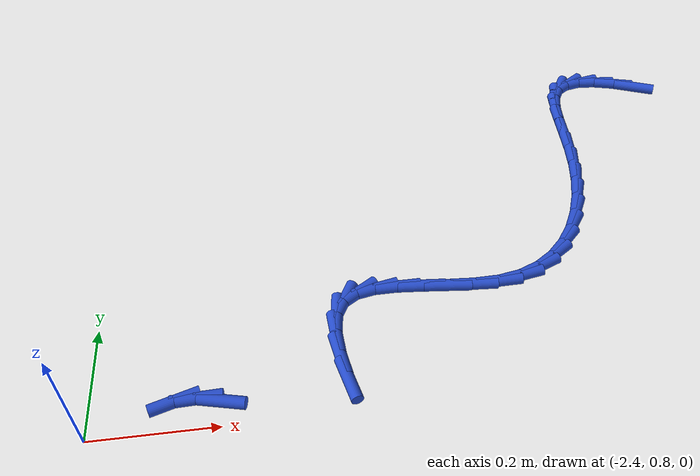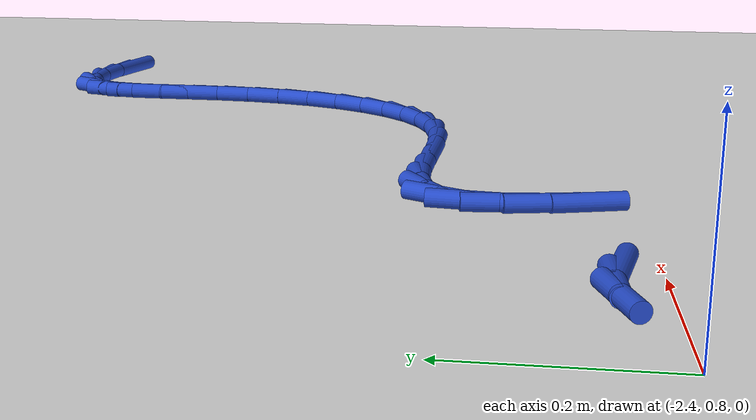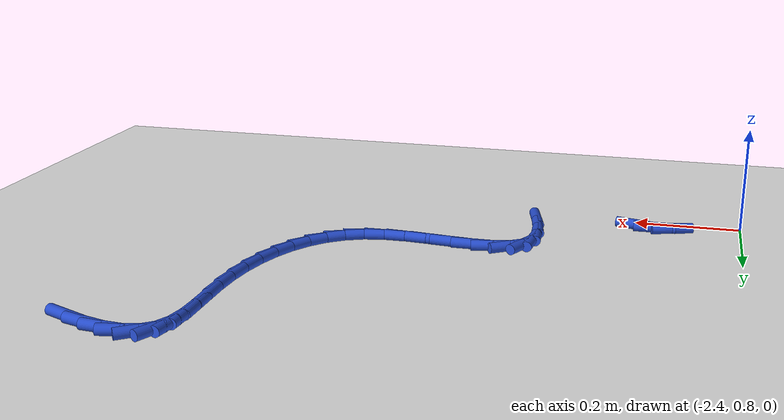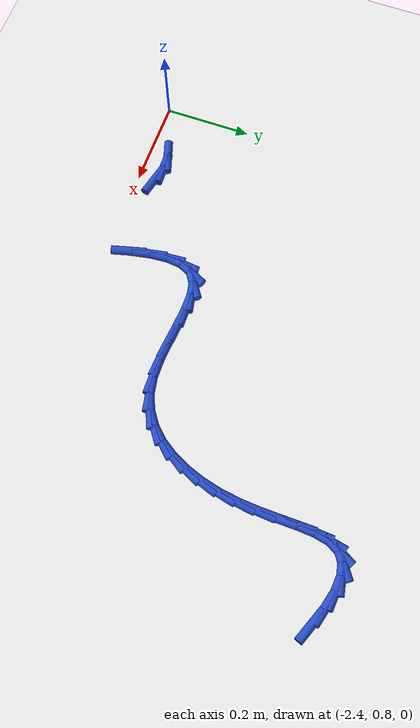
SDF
<sdf version="1.6">
 <world name="default">
  <model name="ground_plane">
   <static>1</static>
   <link name="link">
    <collision name="collision">
     <geometry><plane><normal>0 0 1</normal><size>100 100</size></plane></geometry>
     <surface><friction><ode><mu>100</mu><mu2>50</mu2></ode></friction></surface>
    </collision>
    <visual name="visual">
     <cast_shadows>0</cast_shadows>
     <geometry><plane><normal>0 0 1</normal><size>100 100</size></plane></geometry>
     <material>
      <script><uri>file://media/materials/scripts/gazebo.material</uri><name>Gazebo/WhiteGlow</name></script>
     </material>
    </visual>
   </link>
  </model>
  <model name="line">
   <link name="link_72">
    <pose>-1.3644774054517028 1.4929364755796188 0.01 0 1.57 -0.3667604441353496</pose>
    <collision name="collision">
     <geometry><cylinder><radius>0.01</radius><length>0.08</length></cylinder></geometry>
    </collision>
    <visual name="visual">
     <material>
      <script><name>Gazebo/Blue</name><uri>file://media/materials/scripts/gazebo.material</uri></script>
     </material>
     <geometry><cylinder><radius>0.01</radius><length>0.08</length></cylinder></geometry>
    </visual>
   </link>
   <link name="link_73">
    <pose>-1.4055859418133523 1.5087279464761993 0.01 0 1.57 -0.24593590143215077</pose>
    <collision name="collision">
     <geometry><cylinder><radius>0.01</radius><length>0.08</length></cylinder></geometry>
    </collision>
    <visual name="visual">
     <material>
      <script><name>Gazebo/Blue</name><uri>file://media/materials/scripts/gazebo.material</uri></script>
     </material>
     <geometry><cylinder><radius>0.01</radius><length>0.08</length></cylinder></geometry>
    </visual>
   </link>
   <link name="link_74">
    <pose>-1.4430153377447048 1.5181233727376748 0.01 0 1.57 -0.06765119833788105</pose>
    <collision name="collision">
     <geometry><cylinder><radius>0.01</radius><length>0.08</length></cylinder></geometry>
    </collision>
    <visual name="visual">
     <material>
      <script><name>Gazebo/Blue</name><uri>file://media/materials/scripts/gazebo.material</uri></script>
     </material>
     <geometry><cylinder><radius>0.01</radius><length>0.08</length></cylinder></geometry>
    </visual>
   </link>
   <link name="link_75">
    <pose>-1.475707504338588 1.5203384172021503 0.01 0 1.57 0.2105979048781416</pose>
    <collision name="collision">
     <geometry><cylinder><radius>0.01</radius><length>0.08</length></cylinder></geometry>
    </collision>
    <visual name="visual">
     <material>
      <script><name>Gazebo/Blue</name><uri>file://media/materials/scripts/gazebo.material</uri></script>
     </material>
     <geometry><cylinder><radius>0.01</radius><length>0.08</length></cylinder></geometry>
    </visual>
   </link>
   <link name="link_76">
    <pose>-1.5026043526878303 1.5145887427077307 0.01 0 1.57 0.6262358892823009</pose>
    <collision name="collision">
     <geometry><cylinder><radius>0.01</radius><length>0.08</length></cylinder></geometry>
    </collision>
    <visual name="visual">
     <material>
      <script><name>Gazebo/Blue</name><uri>file://media/materials/scripts/gazebo.material</uri></script>
     </material>
     <geometry><cylinder><radius>0.01</radius><length>0.08</length></cylinder></geometry>
    </visual>
   </link>
   <link name="link_77">
    <pose>-1.5226477938852603 1.5000900120925211 0.01 0 1.57 1.086765213088086</pose>
    <collision name="collision">
     <geometry><cylinder><radius>0.01</radius><length>0.08</length></cylinder></geometry>
    </collision>
    <visual name="visual">
     <material>
      <script><name>Gazebo/Blue</name><uri>file://media/materials/scripts/gazebo.material</uri></script>
     </material>
     <geometry><cylinder><radius>0.01</radius><length>0.08</length></cylinder></geometry>
    </visual>
   </link>
   <link name="link_78">
    <pose>-1.5351283942600615 1.476351141761856 0.01 0 1.57 1.3748497510444528</pose>
    <collision name="collision">
     <geometry><cylinder><radius>0.01</radius><length>0.08</length></cylinder></geometry>
    </collision>
    <visual name="visual">
     <material>
      <script><name>Gazebo/Blue</name><uri>file://media/materials/scripts/gazebo.material</uri></script>
     </material>
     <geometry><cylinder><radius>0.01</radius><length>0.08</length></cylinder></geometry>
    </visual>
   </link>
   <link name="link_79">
    <pose>-1.5414235827329585 1.4446363061395158 0.01 0 1.57 1.511036222267252</pose>
    <collision name="collision">
     <geometry><cylinder><radius>0.01</radius><length>0.08</length></cylinder></geometry>
    </collision>
    <visual name="visual">
     <material>
      <script><name>Gazebo/Blue</name><uri>file://media/materials/scripts/gazebo.material</uri></script>
     </material>
     <geometry><cylinder><radius>0.01</radius><length>0.08</length></cylinder></geometry>
    </visual>
   </link>
   <link name="link_80">
    <pose>-1.5436837984887584 1.406859857801822 0.01 0 1.57 1.5618052354049836</pose>
    <collision name="collision">
     <geometry><cylinder><radius>0.01</radius><length>0.08</length></cylinder></geometry>
    </collision>
    <visual name="visual">
     <material>
      <script><name>Gazebo/Blue</name><uri>file://media/materials/scripts/gazebo.material</uri></script>
     </material>
     <geometry><cylinder><radius>0.01</radius><length>0.08</length></cylinder></geometry>
    </visual>
   </link>
   <link name="link_81">
    <pose>-1.5440607390245298 1.3649372076902673 0.01 0 1.57 1.5561810024425535</pose>
    <collision name="collision">
     <geometry><cylinder><radius>0.01</radius><length>0.08</length></cylinder></geometry>
    </collision>
    <visual name="visual">
     <material>
      <script><name>Gazebo/Blue</name><uri>file://media/materials/scripts/gazebo.material</uri></script>
     </material>
     <geometry><cylinder><radius>0.01</radius><length>0.08</length></cylinder></geometry>
    </visual>
   </link>
   <link name="link_82">
    <pose>-1.5447061018373416 1.3207837667463456 0.01 0 1.57 1.5035635104177802</pose>
    <collision name="collision">
     <geometry><cylinder><radius>0.01</radius><length>0.08</length></cylinder></geometry>
    </collision>
    <visual name="visual">
     <material>
      <script><name>Gazebo/Blue</name><uri>file://media/materials/scripts/gazebo.material</uri></script>
     </material>
     <geometry><cylinder><radius>0.01</radius><length>0.08</length></cylinder></geometry>
    </visual>
   </link>
   <link name="link_83">
    <pose>-1.5477029546044057 1.2762766933040954 0.01 0 1.57 1.4257963768736024</pose>
    <collision name="collision">
     <geometry><cylinder><radius>0.01</radius><length>0.08</length></cylinder></geometry>
    </collision>
    <visual name="visual">
     <material>
      <script><name>Gazebo/Blue</name><uri>file://media/materials/scripts/gazebo.material</uri></script>
     </material>
     <geometry><cylinder><radius>0.01</radius><length>0.08</length></cylinder></geometry>
    </visual>
   </link>
   <link name="link_84">
    <pose>-1.5540665294275007 1.2326979598850527 0.01 0 1.57 1.338399476243084</pose>
    <collision name="collision">
     <geometry><cylinder><radius>0.01</radius><length>0.08</length></cylinder></geometry>
    </collision>
    <visual name="visual">
     <material>
      <script><name>Gazebo/Blue</name><uri>file://media/materials/scripts/gazebo.material</uri></script>
     </material>
     <geometry><cylinder><radius>0.01</radius><length>0.08</length></cylinder></geometry>
    </visual>
   </link>
   <link name="link_85">
    <pose>-1.5639685866569586 1.1908594081860662 0.01 0 1.57 1.2378767355041662</pose>
    <collision name="collision">
     <geometry><cylinder><radius>0.01</radius><length>0.08</length></cylinder></geometry>
    </collision>
    <visual name="visual">
     <material>
      <script><name>Gazebo/Blue</name><uri>file://media/materials/scripts/gazebo.material</uri></script>
     </material>
     <geometry><cylinder><radius>0.01</radius><length>0.08</length></cylinder></geometry>
    </visual>
   </link>
   <link name="link_86">
    <pose>-1.577557913581847 1.1515600752733384 0.01 0 1.57 1.1195749369986085</pose>
    <collision name="collision">
     <geometry><cylinder><radius>0.01</radius><length>0.08</length></cylinder></geometry>
    </collision>
    <visual name="visual">
     <material>
      <script><name>Gazebo/Blue</name><uri>file://media/materials/scripts/gazebo.material</uri></script>
     </material>
     <geometry><cylinder><radius>0.01</radius><length>0.08</length></cylinder></geometry>
    </visual>
   </link>
   <link name="link_87">
    <pose>-1.5949832974912341 1.1155989982130734 0.01 0 1.57 0.9785771842130928</pose>
    <collision name="collision">
     <geometry><cylinder><radius>0.01</radius><length>0.08</length></cylinder></geometry>
    </collision>
    <visual name="visual">
     <material>
      <script><name>Gazebo/Blue</name><uri>file://media/materials/scripts/gazebo.material</uri></script>
     </material>
     <geometry><cylinder><radius>0.01</radius><length>0.08</length></cylinder></geometry>
    </visual>
   </link>
   <link name="link_88">
    <pose>-1.6163935256741888 1.0837752140714743 0.01 0 1.57 0.8110183571782229</pose>
    <collision name="collision">
     <geometry><cylinder><radius>0.01</radius><length>0.08</length></cylinder></geometry>
    </collision>
    <visual name="visual">
     <material>
      <script><name>Gazebo/Blue</name><uri>file://media/materials/scripts/gazebo.material</uri></script>
     </material>
     <geometry><cylinder><radius>0.01</radius><length>0.08</length></cylinder></geometry>
    </visual>
   </link>
   <link name="link_89">
    <pose>-1.6419373854197787 1.0568877599147437 0.01 0 1.57 0.6168579800295301</pose>
    <collision name="collision">
     <geometry><cylinder><radius>0.01</radius><length>0.08</length></cylinder></geometry>
    </collision>
    <visual name="visual">
     <material>
      <script><name>Gazebo/Blue</name><uri>file://media/materials/scripts/gazebo.material</uri></script>
     </material>
     <geometry><cylinder><radius>0.01</radius><length>0.08</length></cylinder></geometry>
    </visual>
   </link>
   <link name="link_90">
    <pose>-1.6717636640170732 1.035735672809086 0.01 0 1.57 0.40331003302145924</pose>
    <collision name="collision">
     <geometry><cylinder><radius>0.01</radius><length>0.08</length></cylinder></geometry>
    </collision>
    <visual name="visual">
     <material>
      <script><name>Gazebo/Blue</name><uri>file://media/materials/scripts/gazebo.material</uri></script>
     </material>
     <geometry><cylinder><radius>0.01</radius><length>0.08</length></cylinder></geometry>
    </visual>
   </link>
   <link name="link_91">
    <pose>-1.7060211487551393 1.0211179898207037 0.01 0 1.57 0.18758997035802177</pose>
    <collision name="collision">
     <geometry><cylinder><radius>0.01</radius><length>0.08</length></cylinder></geometry>
    </collision>
    <visual name="visual">
     <material>
      <script><name>Gazebo/Blue</name><uri>file://media/materials/scripts/gazebo.material</uri></script>
     </material>
     <geometry><cylinder><radius>0.01</radius><length>0.08</length></cylinder></geometry>
    </visual>
   </link>
   <link name="link_92">
    <pose>-1.7448080892110236 1.013755382139723 0.01 0 1.57 0.023890533417448446</pose>
    <collision name="collision">
     <geometry><cylinder><radius>0.01</radius><length>0.08</length></cylinder></geometry>
    </collision>
    <visual name="visual">
     <material>
      <script><name>Gazebo/Blue</name><uri>file://media/materials/scripts/gazebo.material</uri></script>
     </material>
     <geometry><cylinder><radius>0.01</radius><length>0.08</length></cylinder></geometry>
    </visual>
   </link>
   <link name="link_93">
    <pose>-1.7871744676773487 1.0127430341501027 0.01 0 1.57 -0.06580806566914908</pose>
    <collision name="collision">
     <geometry><cylinder><radius>0.01</radius><length>0.08</length></cylinder></geometry>
    </collision>
    <visual name="visual">
     <material>
      <script><name>Gazebo/Blue</name><uri>file://media/materials/scripts/gazebo.material</uri></script>
     </material>
     <geometry><cylinder><radius>0.01</radius><length>0.08</length></cylinder></geometry>
    </visual>
   </link>
   <link name="link_94">
    <pose>-1.8311817234555605 1.015643254400255 0.01 0 1.57 -0.09849352963090716</pose>
    <collision name="collision">
     <geometry><cylinder><radius>0.01</radius><length>0.08</length></cylinder></geometry>
    </collision>
    <visual name="visual">
     <material>
      <script><name>Gazebo/Blue</name><uri>file://media/materials/scripts/gazebo.material</uri></script>
     </material>
     <geometry><cylinder><radius>0.01</radius><length>0.08</length></cylinder></geometry>
    </visual>
   </link>
   <link name="link_95">
    <pose>-1.8748527158807309 1.0199585277397525 0.01 0 1.57 -0.07800868328403475</pose>
    <collision name="collision">
     <geometry><cylinder><radius>0.01</radius><length>0.08</length></cylinder></geometry>
    </collision>
    <visual name="visual">
     <material>
      <script><name>Gazebo/Blue</name><uri>file://media/materials/scripts/gazebo.material</uri></script>
     </material>
     <geometry><cylinder><radius>0.01</radius><length>0.08</length></cylinder></geometry>
    </visual>
   </link>
   <link name="link_96">
    <pose>-1.916210304287928 1.0231913390181666 0.01 0 1.57 0.009365618285870675</pose>
    <collision name="collision">
     <geometry><cylinder><radius>0.01</radius><length>0.08</length></cylinder></geometry>
    </collision>
    <visual name="visual">
     <material>
      <script><name>Gazebo/Blue</name><uri>file://media/materials/scripts/gazebo.material</uri></script>
     </material>
     <geometry><cylinder><radius>0.01</radius><length>0.08</length></cylinder></geometry>
    </visual>
   </link>
   <link name="link_97">
    <pose>-1.9532773480122219 1.022844173085069 0.01 0 1.57 0.205648215844765</pose>
    <collision name="collision">
     <geometry><cylinder><radius>0.01</radius><length>0.08</length></cylinder></geometry>
    </collision>
    <visual name="visual">
     <material>
      <script><name>Gazebo/Blue</name><uri>file://media/materials/scripts/gazebo.material</uri></script>
     </material>
     <geometry><cylinder><radius>0.01</radius><length>0.08</length></cylinder></geometry>
    </visual>
   </link>
   <link name="link_98">
    <pose>-1.9840767063886828 1.0164195147900317 0.01 0 1.57 0.5868755918959616</pose>
    <collision name="collision">
     <geometry><cylinder><radius>0.01</radius><length>0.08</length></cylinder></geometry>
    </collision>
    <visual name="visual">
     <material>
      <script><name>Gazebo/Blue</name><uri>file://media/materials/scripts/gazebo.material</uri></script>
     </material>
     <geometry><cylinder><radius>0.01</radius><length>0.08</length></cylinder></geometry>
    </visual>
   </link>
   <link name="link_99">
    <pose>-2.0066312387523815 1.0014198489826267 0.01 0 1.57 1.1113923010783622</pose>
    <collision name="collision">
     <geometry><cylinder><radius>0.01</radius><length>0.08</length></cylinder></geometry>
    </collision>
    <visual name="visual">
     <material>
      <script><name>Gazebo/Blue</name><uri>file://media/materials/scripts/gazebo.material</uri></script>
     </material>
     <geometry><cylinder><radius>0.01</radius><length>0.08</length></cylinder></geometry>
    </visual>
   </link>
   <link name="link_100">
    <pose>-2.0193057757171697 0.9757995441773206 0.01 0 1.57 1.4694840434929044</pose>
    <collision name="collision">
     <geometry><cylinder><radius>0.01</radius><length>0.08</length></cylinder></geometry>
    </collision>
    <visual name="visual">
     <material>
      <script><name>Gazebo/Blue</name><uri>file://media/materials/scripts/gazebo.material</uri></script>
     </material>
     <geometry><cylinder><radius>0.01</radius><length>0.08</length></cylinder></geometry>
    </visual>
   </link>
   <link name="link_101">
    <pose>-2.0228743608636477 0.9406965227496001 0.01 0 1.57 -1.482431783240344</pose>
    <collision name="collision">
     <geometry><cylinder><radius>0.01</radius><length>0.08</length></cylinder></geometry>
    </collision>
    <visual name="visual">
     <material>
      <script><name>Gazebo/Blue</name><uri>file://media/materials/scripts/gazebo.material</uri></script>
     </material>
     <geometry><cylinder><radius>0.01</radius><length>0.08</length></cylinder></geometry>
    </visual>
   </link>
   <link name="link_102">
    <pose>-2.0191462877328843 0.8986166949009589 0.01 0 1.57 -1.3754188462668702</pose>
    <collision name="collision">
     <geometry><cylinder><radius>0.01</radius><length>0.08</length></cylinder></geometry>
    </collision>
    <visual name="visual">
     <material>
      <script><name>Gazebo/Blue</name><uri>file://media/materials/scripts/gazebo.material</uri></script>
     </material>
     <geometry><cylinder><radius>0.01</radius><length>0.08</length></cylinder></geometry>
    </visual>
   </link>
   <link name="link_103">
    <pose>-2.009934850653409 0.8520712575063986 0.01 0 1.57 -1.3111910798481723</pose>
    <collision name="collision">
     <geometry><cylinder><radius>0.01</radius><length>0.08</length></cylinder></geometry>
    </collision>
    <visual name="visual">
     <material>
      <script><name>Gazebo/Blue</name><uri>file://media/materials/scripts/gazebo.material</uri></script>
     </material>
     <geometry><cylinder><radius>0.01</radius><length>0.08</length></cylinder></geometry>
    </visual>
   </link>
   <link name="link_119">
    <pose>-2.203774023927746 0.8391474685799254 0.01 0 1.57 -0.23691566001716047</pose>
    <collision name="collision">
     <geometry><cylinder><radius>0.01</radius><length>0.08</length></cylinder></geometry>
    </collision>
    <visual name="visual">
     <material>
      <script><name>Gazebo/Blue</name><uri>file://media/materials/scripts/gazebo.material</uri></script>
     </material>
     <geometry><cylinder><radius>0.01</radius><length>0.08</length></cylinder></geometry>
    </visual>
   </link>
   <link name="link_120">
    <pose>-2.2383769869865855 0.8475023577601957 0.01 0 1.57 0.035962543672500714</pose>
    <collision name="collision">
     <geometry><cylinder><radius>0.01</radius><length>0.08</length></cylinder></geometry>
    </collision>
    <visual name="visual">
     <material>
      <script><name>Gazebo/Blue</name><uri>file://media/materials/scripts/gazebo.material</uri></script>
     </material>
     <geometry><cylinder><radius>0.01</radius><length>0.08</length></cylinder></geometry>
    </visual>
   </link>
   <link name="link_121">
    <pose>-2.2711792054670914 0.8463221977328873 0.01 0 1.57 0.30871948636218255</pose>
    <collision name="collision">
     <geometry><cylinder><radius>0.01</radius><length>0.08</length></cylinder></geometry>
    </collision>
    <visual name="visual">
     <material>
      <script><name>Gazebo/Blue</name><uri>file://media/materials/scripts/gazebo.material</uri></script>
     </material>
     <geometry><cylinder><radius>0.01</radius><length>0.08</length></cylinder></geometry>
    </visual>
   </link>
  </model>
 </world>
</sdf>
